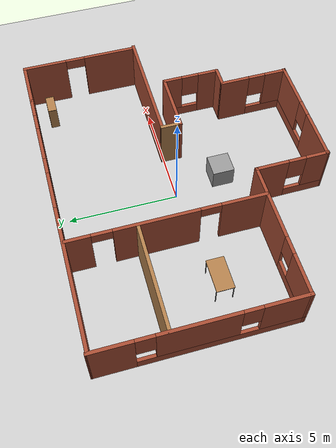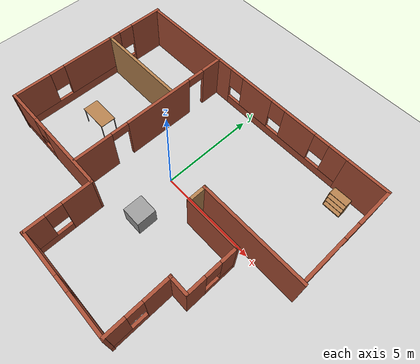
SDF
<sdf version="1.6">
 <world name="default">
  <light name="sun" type="directional">
   <pose>0 0 10 0 -0 0</pose>
   <diffuse>0.8 0.8 0.8 1</diffuse>
   <specular>0.2 0.2 0.2 1</specular>
   <attenuation>
    <range>1000</range>
    <constant>0.9</constant>
    <linear>0.01</linear>
    <quadratic>0.001</quadratic>
   </attenuation>
   <direction>-0.5 0.1 -0.9</direction>
  </light>
  <model name="ground_plane">
   <static>1</static>
   <link name="link">
    <collision name="collision">
     <geometry><plane><normal>0 0 1</normal><size>100 100</size></plane></geometry>
     <surface><friction><ode><mu>100</mu><mu2>50</mu2></ode></friction></surface>
    </collision>
    <visual name="visual">
     <cast_shadows>0</cast_shadows>
     <geometry><plane><normal>0 0 1</normal><size>100 100</size></plane></geometry>
     <material>
      <script><uri>file://media/materials/scripts/gazebo.material</uri><name>Gazebo/Grey</name></script>
     </material>
    </visual>
   </link>
  </model>
  <gravity>0 0 -9.8</gravity>
  <magnetic_field>6e-06 2.3e-05 -4.2e-05</magnetic_field>
  <atmosphere type="adiabatic"/>
  <physics name="default_physics" default="0" type="ode">
   <max_step_size>0.001</max_step_size>
   <real_time_factor>1</real_time_factor>
   <real_time_update_rate>1000</real_time_update_rate>
  </physics>
  <scene><ambient>0.4 0.4 0.4 1</ambient><background>0.7 0.7 0.7 1</background><shadows>1</shadows></scene>
  <spherical_coordinates>
   <surface_model>EARTH_WGS84</surface_model>
   <latitude_deg>0</latitude_deg>
   <longitude_deg>0</longitude_deg>
   <elevation>0</elevation>
   <heading_deg>0</heading_deg>
  </spherical_coordinates>
  <model name="home">
   <pose>0.135395 -0.520069 0 0 -0 0</pose>
   <link name="Wall_11">
    <collision name="Wall_11_Collision">
     <geometry><box><size>1 0.15 2.5</size></box></geometry>
     <pose>0 0 1.25 0 -0 0</pose>
    </collision>
    <visual name="Wall_11_Visual">
     <pose>0 0 1.25 0 -0 0</pose>
     <geometry><box><size>1 0.15 2.5</size></box></geometry>
     <material>
      <script><uri>file://media/materials/scripts/gazebo.material</uri><name>Gazebo/Wood</name></script>
      <ambient>1 1 1 1</ambient>
     </material>
     <meta><layer>0</layer></meta>
    </visual>
    <pose>2.05253 0.152381 0 0 -0 1.5708</pose>
   </link>
   <link name="Wall_21">
    <pose>-4.35242 -2.71192 0 0 -0 3.14159</pose>
    <visual name="Wall_21_Visual_0">
     <pose>-1.33898 0 1.25 0 -0 0</pose>
     <geometry><box><size>3.57205 0.15 2.5</size></box></geometry>
     <material>
      <script><uri>file://media/materials/scripts/gazebo.material</uri><name>Gazebo/Bricks</name></script>
      <ambient>1 1 1 1</ambient>
     </material>
     <meta><layer>0</layer></meta>
    </visual>
    <collision name="Wall_21_Collision_0">
     <geometry><box><size>3.57205 0.15 2.5</size></box></geometry>
     <pose>-1.33898 0 1.25 0 -0 0</pose>
    </collision>
    <visual name="Wall_21_Visual_1">
     <pose>1.78602 0 0.25 0 -0 0</pose>
     <geometry><box><size>2.67795 0.15 0.5</size></box></geometry>
     <material>
      <script><uri>file://media/materials/scripts/gazebo.material</uri><name>Gazebo/Bricks</name></script>
      <ambient>1 1 1 1</ambient>
     </material>
     <meta><layer>0</layer></meta>
    </visual>
    <collision name="Wall_21_Collision_1">
     <geometry><box><size>2.67795 0.15 0.5</size></box></geometry>
     <pose>1.78602 0 0.25 0 -0 0</pose>
    </collision>
    <visual name="Wall_21_Visual_2">
     <pose>2.18602 0 1.5 0 -0 0</pose>
     <geometry><box><size>1.87795 0.15 2</size></box></geometry>
     <material>
      <script><uri>file://media/materials/scripts/gazebo.material</uri><name>Gazebo/Bricks</name></script>
      <ambient>1 1 1 1</ambient>
     </material>
     <meta><layer>0</layer></meta>
    </visual>
    <collision name="Wall_21_Collision_2">
     <geometry><box><size>1.87795 0.15 2</size></box></geometry>
     <pose>2.18602 0 1.5 0 -0 0</pose>
    </collision>
    <visual name="Wall_21_Visual_3">
     <pose>0.847047 0 1.9 0 -0 0</pose>
     <geometry><box><size>0.8 0.15 1.2</size></box></geometry>
     <material>
      <script><uri>file://media/materials/scripts/gazebo.material</uri><name>Gazebo/Bricks</name></script>
      <ambient>1 1 1 1</ambient>
     </material>
     <meta><layer>0</layer></meta>
    </visual>
    <collision name="Wall_21_Collision_3">
     <geometry><box><size>0.8 0.15 1.2</size></box></geometry>
     <pose>0.847047 0 1.9 0 -0 0</pose>
    </collision>
   </link>
   <link name="Wall_25">
    <pose>-7.39585 1.64017 0 0 -0 -1.5723</pose>
    <visual name="Wall_25_Visual_0">
     <pose>-3.5155 0 1.25 0 -0 0</pose>
     <geometry><box><size>1.86058 0.15 2.5</size></box></geometry>
     <material>
      <script><uri>file://media/materials/scripts/gazebo.material</uri><name>Gazebo/Bricks</name></script>
      <ambient>1 1 1 1</ambient>
     </material>
     <meta><layer>0</layer></meta>
    </visual>
    <collision name="Wall_25_Collision_0">
     <geometry><box><size>1.86058 0.15 2.5</size></box></geometry>
     <pose>-3.5155 0 1.25 0 -0 0</pose>
    </collision>
    <visual name="Wall_25_Visual_1">
     <pose>0.930288 0 0.25 0 -0 0</pose>
     <geometry><box><size>7.03099 0.15 0.5</size></box></geometry>
     <material>
      <script><uri>file://media/materials/scripts/gazebo.material</uri><name>Gazebo/Bricks</name></script>
      <ambient>1 1 1 1</ambient>
     </material>
     <meta><layer>0</layer></meta>
    </visual>
    <collision name="Wall_25_Collision_1">
     <geometry><box><size>7.03099 0.15 0.5</size></box></geometry>
     <pose>0.930288 0 0.25 0 -0 0</pose>
    </collision>
    <visual name="Wall_25_Visual_2">
     <pose>-0.079279 0 1.5 0 -0 0</pose>
     <geometry><box><size>3.41186 0.15 2</size></box></geometry>
     <material>
      <script><uri>file://media/materials/scripts/gazebo.material</uri><name>Gazebo/Bricks</name></script>
      <ambient>1 1 1 1</ambient>
     </material>
     <meta><layer>0</layer></meta>
    </visual>
    <collision name="Wall_25_Collision_2">
     <geometry><box><size>3.41186 0.15 2</size></box></geometry>
     <pose>-0.079279 0 1.5 0 -0 0</pose>
    </collision>
    <visual name="Wall_25_Visual_3">
     <pose>3.43622 0 1.5 0 -0 0</pose>
     <geometry><box><size>2.01913 0.15 2</size></box></geometry>
     <material>
      <script><uri>file://media/materials/scripts/gazebo.material</uri><name>Gazebo/Bricks</name></script>
      <ambient>1 1 1 1</ambient>
     </material>
     <meta><layer>0</layer></meta>
    </visual>
    <collision name="Wall_25_Collision_3">
     <geometry><box><size>2.01913 0.15 2</size></box></geometry>
     <pose>3.43622 0 1.5 0 -0 0</pose>
    </collision>
    <visual name="Wall_25_Visual_4">
     <pose>-2.18521 0 1.9 0 -0 0</pose>
     <geometry><box><size>0.8 0.15 1.2</size></box></geometry>
     <material>
      <script><uri>file://media/materials/scripts/gazebo.material</uri><name>Gazebo/Bricks</name></script>
      <ambient>1 1 1 1</ambient>
     </material>
     <meta><layer>0</layer></meta>
    </visual>
    <collision name="Wall_25_Collision_4">
     <geometry><box><size>0.8 0.15 1.2</size></box></geometry>
     <pose>-2.18521 0 1.9 0 -0 0</pose>
    </collision>
    <visual name="Wall_25_Visual_5">
     <pose>2.02665 0 1.9 0 -0 0</pose>
     <geometry><box><size>0.8 0.15 1.2</size></box></geometry>
     <material>
      <script><uri>file://media/materials/scripts/gazebo.material</uri><name>Gazebo/Bricks</name></script>
      <ambient>1 1 1 1</ambient>
     </material>
     <meta><layer>0</layer></meta>
    </visual>
    <collision name="Wall_25_Collision_5">
     <geometry><box><size>0.8 0.15 1.2</size></box></geometry>
     <pose>2.02665 0 1.9 0 -0 0</pose>
    </collision>
   </link>
   <link name="Wall_30">
    <pose>-1.29167 -4.37059 0 0 -0 -1.56424</pose>
    <visual name="Wall_30_Visual_0">
     <pose>-0.9473 0 1.25 0 -0 0</pose>
     <geometry><box><size>1.53543 0.15 2.5</size></box></geometry>
     <material>
      <script><uri>file://media/materials/scripts/gazebo.material</uri><name>Gazebo/Bricks</name></script>
      <ambient>1 1 1 1</ambient>
     </material>
     <meta><layer>0</layer></meta>
    </visual>
    <collision name="Wall_30_Collision_0">
     <geometry><box><size>1.53543 0.15 2.5</size></box></geometry>
     <pose>-0.9473 0 1.25 0 -0 0</pose>
    </collision>
    <visual name="Wall_30_Visual_1">
     <pose>0.767713 0 0.25 0 -0 0</pose>
     <geometry><box><size>1.8946 0.15 0.5</size></box></geometry>
     <material>
      <script><uri>file://media/materials/scripts/gazebo.material</uri><name>Gazebo/Bricks</name></script>
      <ambient>1 1 1 1</ambient>
     </material>
     <meta><layer>0</layer></meta>
    </visual>
    <collision name="Wall_30_Collision_1">
     <geometry><box><size>1.8946 0.15 0.5</size></box></geometry>
     <pose>0.767713 0 0.25 0 -0 0</pose>
    </collision>
    <visual name="Wall_30_Visual_2">
     <pose>1.16771 0 1.5 0 -0 0</pose>
     <geometry><box><size>1.0946 0.15 2</size></box></geometry>
     <material>
      <script><uri>file://media/materials/scripts/gazebo.material</uri><name>Gazebo/Bricks</name></script>
      <ambient>1 1 1 1</ambient>
     </material>
     <meta><layer>0</layer></meta>
    </visual>
    <collision name="Wall_30_Collision_2">
     <geometry><box><size>1.0946 0.15 2</size></box></geometry>
     <pose>1.16771 0 1.5 0 -0 0</pose>
    </collision>
    <visual name="Wall_30_Visual_3">
     <pose>0.220413 0 1.9 0 -0 0</pose>
     <geometry><box><size>0.8 0.15 1.2</size></box></geometry>
     <material>
      <script><uri>file://media/materials/scripts/gazebo.material</uri><name>Gazebo/Bricks</name></script>
      <ambient>1 1 1 1</ambient>
     </material>
     <meta><layer>0</layer></meta>
    </visual>
    <collision name="Wall_30_Collision_3">
     <geometry><box><size>0.8 0.15 1.2</size></box></geometry>
     <pose>0.220413 0 1.9 0 -0 0</pose>
    </collision>
   </link>
   <link name="Wall_32">
    <pose>-1.08927 5.97314 0 0 -0 0</pose>
    <visual name="Wall_32_Visual_0">
     <pose>-3.49837 0 1.25 0 -0 0</pose>
     <geometry><box><size>5.75327 0.15 2.5</size></box></geometry>
     <material>
      <script><uri>file://media/materials/scripts/gazebo.material</uri><name>Gazebo/Bricks</name></script>
      <ambient>1 1 1 1</ambient>
     </material>
     <meta><layer>0</layer></meta>
    </visual>
    <collision name="Wall_32_Collision_0">
     <geometry><box><size>5.75327 0.15 2.5</size></box></geometry>
     <pose>-3.49837 0 1.25 0 -0 0</pose>
    </collision>
    <visual name="Wall_32_Visual_1">
     <pose>2.87663 0 0.25 0 -0 0</pose>
     <geometry><box><size>6.99673 0.15 0.5</size></box></geometry>
     <material>
      <script><uri>file://media/materials/scripts/gazebo.material</uri><name>Gazebo/Bricks</name></script>
      <ambient>1 1 1 1</ambient>
     </material>
     <meta><layer>0</layer></meta>
    </visual>
    <collision name="Wall_32_Collision_1">
     <geometry><box><size>6.99673 0.15 0.5</size></box></geometry>
     <pose>2.87663 0 0.25 0 -0 0</pose>
    </collision>
    <visual name="Wall_32_Visual_2">
     <pose>1.09596 0 1.5 0 -0 0</pose>
     <geometry><box><size>1.83539 0.15 2</size></box></geometry>
     <material>
      <script><uri>file://media/materials/scripts/gazebo.material</uri><name>Gazebo/Bricks</name></script>
      <ambient>1 1 1 1</ambient>
     </material>
     <meta><layer>0</layer></meta>
    </visual>
    <collision name="Wall_32_Collision_2">
     <geometry><box><size>1.83539 0.15 2</size></box></geometry>
     <pose>1.09596 0 1.5 0 -0 0</pose>
    </collision>
    <visual name="Wall_32_Visual_3">
     <pose>3.68463 0 1.5 0 -0 0</pose>
     <geometry><box><size>1.74194 0.15 2</size></box></geometry>
     <material>
      <script><uri>file://media/materials/scripts/gazebo.material</uri><name>Gazebo/Bricks</name></script>
      <ambient>1 1 1 1</ambient>
     </material>
     <meta><layer>0</layer></meta>
    </visual>
    <collision name="Wall_32_Collision_3">
     <geometry><box><size>1.74194 0.15 2</size></box></geometry>
     <pose>3.68463 0 1.5 0 -0 0</pose>
    </collision>
    <visual name="Wall_32_Visual_4">
     <pose>5.8653 0 1.5 0 -0 0</pose>
     <geometry><box><size>1.0194 0.15 2</size></box></geometry>
     <material>
      <script><uri>file://media/materials/scripts/gazebo.material</uri><name>Gazebo/Bricks</name></script>
      <ambient>1 1 1 1</ambient>
     </material>
     <meta><layer>0</layer></meta>
    </visual>
    <collision name="Wall_32_Collision_4">
     <geometry><box><size>1.0194 0.15 2</size></box></geometry>
     <pose>5.8653 0 1.5 0 -0 0</pose>
    </collision>
    <visual name="Wall_32_Visual_5">
     <pose>-0.221732 0 1.9 0 -0 0</pose>
     <geometry><box><size>0.8 0.15 1.2</size></box></geometry>
     <material>
      <script><uri>file://media/materials/scripts/gazebo.material</uri><name>Gazebo/Bricks</name></script>
      <ambient>1 1 1 1</ambient>
     </material>
     <meta><layer>0</layer></meta>
    </visual>
    <collision name="Wall_32_Collision_5">
     <geometry><box><size>0.8 0.15 1.2</size></box></geometry>
     <pose>-0.221732 0 1.9 0 -0 0</pose>
    </collision>
    <visual name="Wall_32_Visual_6">
     <pose>2.41366 0 1.9 0 -0 0</pose>
     <geometry><box><size>0.8 0.15 1.2</size></box></geometry>
     <material>
      <script><uri>file://media/materials/scripts/gazebo.material</uri><name>Gazebo/Bricks</name></script>
      <ambient>1 1 1 1</ambient>
     </material>
     <meta><layer>0</layer></meta>
    </visual>
    <collision name="Wall_32_Collision_6">
     <geometry><box><size>0.8 0.15 1.2</size></box></geometry>
     <pose>2.41366 0 1.9 0 -0 0</pose>
    </collision>
    <visual name="Wall_32_Visual_7">
     <pose>4.9556 0 1.9 0 -0 0</pose>
     <geometry><box><size>0.8 0.15 1.2</size></box></geometry>
     <material>
      <script><uri>file://media/materials/scripts/gazebo.material</uri><name>Gazebo/Bricks</name></script>
      <ambient>1 1 1 1</ambient>
     </material>
     <meta><layer>0</layer></meta>
    </visual>
    <collision name="Wall_32_Collision_7">
     <geometry><box><size>0.8 0.15 1.2</size></box></geometry>
     <pose>4.9556 0 1.9 0 -0 0</pose>
    </collision>
   </link>
   <link name="Wall_36">
    <pose>-2.61655 1.59512 0 0 -0 1.5708</pose>
    <visual name="Wall_36_Visual_0">
     <pose>-3.33035 0 1.25 0 -0 0</pose>
     <geometry><box><size>2.0893 0.15 2.5</size></box></geometry>
     <material>
      <script><uri>file://media/materials/scripts/gazebo.material</uri><name>Gazebo/Bricks</name></script>
      <ambient>1 1 1 1</ambient>
     </material>
     <meta><layer>0</layer></meta>
    </visual>
    <collision name="Wall_36_Collision_0">
     <geometry><box><size>2.0893 0.15 2.5</size></box></geometry>
     <pose>-3.33035 0 1.25 0 -0 0</pose>
    </collision>
    <visual name="Wall_36_Visual_1">
     <pose>0.480973 0 1.25 0 -0 0</pose>
     <geometry><box><size>3.73334 0.15 2.5</size></box></geometry>
     <material>
      <script><uri>file://media/materials/scripts/gazebo.material</uri><name>Gazebo/Bricks</name></script>
      <ambient>1 1 1 1</ambient>
     </material>
     <meta><layer>0</layer></meta>
    </visual>
    <collision name="Wall_36_Collision_1">
     <geometry><box><size>3.73334 0.15 2.5</size></box></geometry>
     <pose>0.480973 0 1.25 0 -0 0</pose>
    </collision>
    <visual name="Wall_36_Visual_2">
     <pose>3.81132 0 1.25 0 -0 0</pose>
     <geometry><box><size>1.12736 0.15 2.5</size></box></geometry>
     <material>
      <script><uri>file://media/materials/scripts/gazebo.material</uri><name>Gazebo/Bricks</name></script>
      <ambient>1 1 1 1</ambient>
     </material>
     <meta><layer>0</layer></meta>
    </visual>
    <collision name="Wall_36_Collision_2">
     <geometry><box><size>1.12736 0.15 2.5</size></box></geometry>
     <pose>3.81132 0 1.25 0 -0 0</pose>
    </collision>
    <visual name="Wall_36_Visual_3">
     <pose>-1.8357 0 2.25 0 -0 0</pose>
     <geometry><box><size>0.9 0.15 0.5</size></box></geometry>
     <material>
      <script><uri>file://media/materials/scripts/gazebo.material</uri><name>Gazebo/Bricks</name></script>
      <ambient>1 1 1 1</ambient>
     </material>
     <meta><layer>0</layer></meta>
    </visual>
    <collision name="Wall_36_Collision_3">
     <geometry><box><size>0.9 0.15 0.5</size></box></geometry>
     <pose>-1.8357 0 2.25 0 -0 0</pose>
    </collision>
    <visual name="Wall_36_Visual_4">
     <pose>2.79765 0 2.25 0 -0 0</pose>
     <geometry><box><size>0.9 0.15 0.5</size></box></geometry>
     <material>
      <script><uri>file://media/materials/scripts/gazebo.material</uri><name>Gazebo/Bricks</name></script>
      <ambient>1 1 1 1</ambient>
     </material>
     <meta><layer>0</layer></meta>
    </visual>
    <collision name="Wall_36_Collision_4">
     <geometry><box><size>0.9 0.15 0.5</size></box></geometry>
     <pose>2.79765 0 2.25 0 -0 0</pose>
    </collision>
   </link>
   <link name="Wall_38">
    <collision name="Wall_38_Collision">
     <geometry><box><size>4.75 0.15 2.5</size></box></geometry>
     <pose>0 0 1.25 0 -0 0</pose>
    </collision>
    <visual name="Wall_38_Visual">
     <pose>0 0 1.25 0 -0 0</pose>
     <geometry><box><size>4.75 0.15 2.5</size></box></geometry>
     <material>
      <script><uri>file://media/materials/scripts/gazebo.material</uri><name>Gazebo/Wood</name></script>
      <ambient>1 1 1 1</ambient>
     </material>
     <meta><layer>0</layer></meta>
    </visual>
    <pose>-5.06252 2.89061 0 0 -0 0</pose>
   </link>
   <link name="Wall_45">
    <pose>3.88151 -4.43231 0 0 -0 -1.5656</pose>
    <visual name="Wall_45_Visual_0">
     <pose>-0.937293 0 1.25 0 -0 0</pose>
     <geometry><box><size>1.3941 0.15 2.5</size></box></geometry>
     <material>
      <script><uri>file://media/materials/scripts/gazebo.material</uri><name>Gazebo/Bricks</name></script>
      <ambient>1 1 1 1</ambient>
     </material>
     <meta><layer>0</layer></meta>
    </visual>
    <collision name="Wall_45_Collision_0">
     <geometry><box><size>1.3941 0.15 2.5</size></box></geometry>
     <pose>-0.937293 0 1.25 0 -0 0</pose>
    </collision>
    <visual name="Wall_45_Visual_1">
     <pose>0.697049 0 0.25 0 -0 0</pose>
     <geometry><box><size>1.87459 0.15 0.5</size></box></geometry>
     <material>
      <script><uri>file://media/materials/scripts/gazebo.material</uri><name>Gazebo/Bricks</name></script>
      <ambient>1 1 1 1</ambient>
     </material>
     <meta><layer>0</layer></meta>
    </visual>
    <collision name="Wall_45_Collision_1">
     <geometry><box><size>1.87459 0.15 0.5</size></box></geometry>
     <pose>0.697049 0 0.25 0 -0 0</pose>
    </collision>
    <visual name="Wall_45_Visual_2">
     <pose>1.09705 0 1.5 0 -0 0</pose>
     <geometry><box><size>1.07459 0.15 2</size></box></geometry>
     <material>
      <script><uri>file://media/materials/scripts/gazebo.material</uri><name>Gazebo/Bricks</name></script>
      <ambient>1 1 1 1</ambient>
     </material>
     <meta><layer>0</layer></meta>
    </visual>
    <collision name="Wall_45_Collision_2">
     <geometry><box><size>1.07459 0.15 2</size></box></geometry>
     <pose>1.09705 0 1.5 0 -0 0</pose>
    </collision>
    <visual name="Wall_45_Visual_3">
     <pose>0.159756 0 1.9 0 -0 0</pose>
     <geometry><box><size>0.8 0.15 1.2</size></box></geometry>
     <material>
      <script><uri>file://media/materials/scripts/gazebo.material</uri><name>Gazebo/Bricks</name></script>
      <ambient>1 1 1 1</ambient>
     </material>
     <meta><layer>0</layer></meta>
    </visual>
    <collision name="Wall_45_Collision_3">
     <geometry><box><size>0.8 0.15 1.2</size></box></geometry>
     <pose>0.159756 0 1.9 0 -0 0</pose>
    </collision>
   </link>
   <link name="Wall_47">
    <pose>1.31509 -5.99035 0 0 -0 -0.000493</pose>
    <visual name="Wall_47_Visual_0">
     <pose>-1.5056 0 1.25 0 -0 0</pose>
     <geometry><box><size>2.33083 0.15 2.5</size></box></geometry>
     <material>
      <script><uri>file://media/materials/scripts/gazebo.material</uri><name>Gazebo/Bricks</name></script>
      <ambient>1 1 1 1</ambient>
     </material>
     <meta><layer>0</layer></meta>
    </visual>
    <collision name="Wall_47_Collision_0">
     <geometry><box><size>2.33083 0.15 2.5</size></box></geometry>
     <pose>-1.5056 0 1.25 0 -0 0</pose>
    </collision>
    <visual name="Wall_47_Visual_1">
     <pose>1.16541 0 0.25 0 -0 0</pose>
     <geometry><box><size>3.01121 0.15 0.5</size></box></geometry>
     <material>
      <script><uri>file://media/materials/scripts/gazebo.material</uri><name>Gazebo/Bricks</name></script>
      <ambient>1 1 1 1</ambient>
     </material>
     <meta><layer>0</layer></meta>
    </visual>
    <collision name="Wall_47_Collision_1">
     <geometry><box><size>3.01121 0.15 0.5</size></box></geometry>
     <pose>1.16541 0 0.25 0 -0 0</pose>
    </collision>
    <visual name="Wall_47_Visual_2">
     <pose>1.56541 0 1.5 0 -0 0</pose>
     <geometry><box><size>2.21121 0.15 2</size></box></geometry>
     <material>
      <script><uri>file://media/materials/scripts/gazebo.material</uri><name>Gazebo/Bricks</name></script>
      <ambient>1 1 1 1</ambient>
     </material>
     <meta><layer>0</layer></meta>
    </visual>
    <collision name="Wall_47_Collision_2">
     <geometry><box><size>2.21121 0.15 2</size></box></geometry>
     <pose>1.56541 0 1.5 0 -0 0</pose>
    </collision>
    <visual name="Wall_47_Visual_3">
     <pose>0.059809 0 1.9 0 -0 0</pose>
     <geometry><box><size>0.8 0.15 1.2</size></box></geometry>
     <material>
      <script><uri>file://media/materials/scripts/gazebo.material</uri><name>Gazebo/Bricks</name></script>
      <ambient>1 1 1 1</ambient>
     </material>
     <meta><layer>0</layer></meta>
    </visual>
    <collision name="Wall_47_Collision_3">
     <geometry><box><size>0.8 0.15 1.2</size></box></geometry>
     <pose>0.059809 0 1.9 0 -0 0</pose>
    </collision>
   </link>
   <link name="Wall_50">
    <pose>7.31876 3.29265 0 0 -0 -1.5708</pose>
    <visual name="Wall_50_Visual_0">
     <pose>-1.71277 0 1.25 0 -0 0</pose>
     <geometry><box><size>2.07446 0.15 2.5</size></box></geometry>
     <material>
      <script><uri>file://media/materials/scripts/gazebo.material</uri><name>Gazebo/Bricks</name></script>
      <ambient>1 1 1 1</ambient>
     </material>
     <meta><layer>0</layer></meta>
    </visual>
    <collision name="Wall_50_Collision_0">
     <geometry><box><size>2.07446 0.15 2.5</size></box></geometry>
     <pose>-1.71277 0 1.25 0 -0 0</pose>
    </collision>
    <visual name="Wall_50_Visual_1">
     <pose>1.48723 0 1.25 0 -0 0</pose>
     <geometry><box><size>2.52554 0.15 2.5</size></box></geometry>
     <material>
      <script><uri>file://media/materials/scripts/gazebo.material</uri><name>Gazebo/Bricks</name></script>
      <ambient>1 1 1 1</ambient>
     </material>
     <meta><layer>0</layer></meta>
    </visual>
    <collision name="Wall_50_Collision_1">
     <geometry><box><size>2.52554 0.15 2.5</size></box></geometry>
     <pose>1.48723 0 1.25 0 -0 0</pose>
    </collision>
    <visual name="Wall_50_Visual_2">
     <pose>-0.225536 0 2.25 0 -0 0</pose>
     <geometry><box><size>0.9 0.15 0.5</size></box></geometry>
     <material>
      <script><uri>file://media/materials/scripts/gazebo.material</uri><name>Gazebo/Bricks</name></script>
      <ambient>1 1 1 1</ambient>
     </material>
     <meta><layer>0</layer></meta>
    </visual>
    <collision name="Wall_50_Collision_2">
     <geometry><box><size>0.9 0.15 0.5</size></box></geometry>
     <pose>-0.225536 0 2.25 0 -0 0</pose>
    </collision>
   </link>
   <link name="Wall_55">
    <collision name="Wall_55_Collision">
     <geometry><box><size>5.5 0.15 2.5</size></box></geometry>
     <pose>0 0 1.25 0 -0 0</pose>
    </collision>
    <visual name="Wall_55_Visual">
     <pose>0 0 1.25 0 -0 0</pose>
     <geometry><box><size>5.5 0.15 2.5</size></box></geometry>
     <material>
      <script><uri>file://media/materials/scripts/gazebo.material</uri><name>Gazebo/Bricks</name></script>
      <ambient>1 1 1 1</ambient>
     </material>
     <meta><layer>0</layer></meta>
    </visual>
    <pose>4.72753 0.577381 0 0 -0 0</pose>
   </link>
   <link name="Wall_57">
    <collision name="Wall_57_Collision">
     <geometry><box><size>2.25804 0.15 2.5</size></box></geometry>
     <pose>0 0 1.25 0 -0 0</pose>
    </collision>
    <visual name="Wall_57_Visual">
     <pose>0 0 1.25 0 -0 0</pose>
     <geometry><box><size>2.25804 0.15 2.5</size></box></geometry>
     <material>
      <script><uri>file://media/materials/scripts/gazebo.material</uri><name>Gazebo/Bricks</name></script>
      <ambient>1 1 1 1</ambient>
     </material>
     <meta><layer>0</layer></meta>
    </visual>
    <pose>6.26475 5.9704 0 0 -0 -0.002602</pose>
   </link>
   <link name="Wall_7">
    <collision name="Wall_7_Collision">
     <geometry><box><size>1 0.15 2.5</size></box></geometry>
     <pose>0 0 1.25 0 -0 0</pose>
    </collision>
    <visual name="Wall_7_Visual">
     <pose>0 0 1.25 0 -0 0</pose>
     <geometry><box><size>1 0.15 2.5</size></box></geometry>
     <material>
      <script><uri>file://media/materials/scripts/gazebo.material</uri><name>Gazebo/Bricks</name></script>
      <ambient>1 1 1 1</ambient>
     </material>
     <meta><layer>0</layer></meta>
    </visual>
    <pose>4.31989 -2.87299 0 0 -0 0</pose>
   </link>
   <link name="Wall_8">
    <pose>4.74489 -1.57299 0 0 -0 1.5708</pose>
    <visual name="Wall_8_Visual_0">
     <pose>-0.864898 0 1.25 0 -0 0</pose>
     <geometry><box><size>1.0202 0.15 2.5</size></box></geometry>
     <material>
      <script><uri>file://media/materials/scripts/gazebo.material</uri><name>Gazebo/Bricks</name></script>
      <ambient>1 1 1 1</ambient>
     </material>
     <meta><layer>0</layer></meta>
    </visual>
    <collision name="Wall_8_Collision_0">
     <geometry><box><size>1.0202 0.15 2.5</size></box></geometry>
     <pose>-0.864898 0 1.25 0 -0 0</pose>
    </collision>
    <visual name="Wall_8_Visual_1">
     <pose>0.510102 0 0.25 0 -0 0</pose>
     <geometry><box><size>1.7298 0.15 0.5</size></box></geometry>
     <material>
      <script><uri>file://media/materials/scripts/gazebo.material</uri><name>Gazebo/Bricks</name></script>
      <ambient>1 1 1 1</ambient>
     </material>
     <meta><layer>0</layer></meta>
    </visual>
    <collision name="Wall_8_Collision_1">
     <geometry><box><size>1.7298 0.15 0.5</size></box></geometry>
     <pose>0.510102 0 0.25 0 -0 0</pose>
    </collision>
    <visual name="Wall_8_Visual_2">
     <pose>0.910102 0 1.5 0 -0 0</pose>
     <geometry><box><size>0.929797 0.15 2</size></box></geometry>
     <material>
      <script><uri>file://media/materials/scripts/gazebo.material</uri><name>Gazebo/Bricks</name></script>
      <ambient>1 1 1 1</ambient>
     </material>
     <meta><layer>0</layer></meta>
    </visual>
    <collision name="Wall_8_Collision_2">
     <geometry><box><size>0.929797 0.15 2</size></box></geometry>
     <pose>0.910102 0 1.5 0 -0 0</pose>
    </collision>
    <visual name="Wall_8_Visual_3">
     <pose>0.045203 0 1.9 0 -0 0</pose>
     <geometry><box><size>0.8 0.15 1.2</size></box></geometry>
     <material>
      <script><uri>file://media/materials/scripts/gazebo.material</uri><name>Gazebo/Bricks</name></script>
      <ambient>1 1 1 1</ambient>
     </material>
     <meta><layer>0</layer></meta>
    </visual>
    <collision name="Wall_8_Collision_3">
     <geometry><box><size>0.8 0.15 1.2</size></box></geometry>
     <pose>0.045203 0 1.9 0 -0 0</pose>
    </collision>
   </link>
   <link name="Wall_9">
    <collision name="Wall_9_Collision">
     <geometry><box><size>2.84585 0.15 2.5</size></box></geometry>
     <pose>0 0 1.25 0 -0 0</pose>
    </collision>
    <visual name="Wall_9_Visual">
     <pose>0 0 1.25 0 -0 0</pose>
     <geometry><box><size>2.84585 0.15 2.5</size></box></geometry>
     <material>
      <script><uri>file://media/materials/scripts/gazebo.material</uri><name>Gazebo/Bricks</name></script>
      <ambient>1 1 1 1</ambient>
     </material>
     <meta><layer>0</layer></meta>
    </visual>
    <pose>3.39697 -0.272805 0 0 -0 3.14146</pose>
   </link>
   <static>1</static>
  </model>
  <model name="table">
   <static>1</static>
   <link name="link">
    <collision name="surface">
     <pose>0 0 1 0 -0 0</pose>
     <geometry><box><size>1.5 0.8 0.03</size></box></geometry>
     <surface><friction><ode><mu>0.6</mu><mu2>0.6</mu2></ode></friction></surface>
    </collision>
    <visual name="visual1">
     <pose>0 0 1 0 -0 0</pose>
     <geometry><box><size>1.5 0.8 0.03</size></box></geometry>
     <material>
      <script><uri>file://media/materials/scripts/gazebo.material</uri><name>Gazebo/Wood</name></script>
     </material>
    </visual>
    <collision name="front_left_leg">
     <pose>0.68 0.38 0.5 0 -0 0</pose>
     <geometry><cylinder><radius>0.02</radius><length>1</length></cylinder></geometry>
    </collision>
    <visual name="front_left_leg">
     <pose>0.68 0.38 0.5 0 -0 0</pose>
     <geometry><cylinder><radius>0.02</radius><length>1</length></cylinder></geometry>
     <material>
      <script><uri>file://media/materials/scripts/gazebo.material</uri><name>Gazebo/Grey</name></script>
     </material>
    </visual>
    <collision name="front_right_leg">
     <pose>0.68 -0.38 0.5 0 -0 0</pose>
     <geometry><cylinder><radius>0.02</radius><length>1</length></cylinder></geometry>
    </collision>
    <visual name="front_right_leg">
     <pose>0.68 -0.38 0.5 0 -0 0</pose>
     <geometry><cylinder><radius>0.02</radius><length>1</length></cylinder></geometry>
     <material>
      <script><uri>file://media/materials/scripts/gazebo.material</uri><name>Gazebo/Grey</name></script>
     </material>
    </visual>
    <collision name="back_right_leg">
     <pose>-0.68 -0.38 0.5 0 -0 0</pose>
     <geometry><cylinder><radius>0.02</radius><length>1</length></cylinder></geometry>
    </collision>
    <visual name="back_right_leg">
     <pose>-0.68 -0.38 0.5 0 -0 0</pose>
     <geometry><cylinder><radius>0.02</radius><length>1</length></cylinder></geometry>
     <material>
      <script><uri>file://media/materials/scripts/gazebo.material</uri><name>Gazebo/Grey</name></script>
     </material>
    </visual>
    <collision name="back_left_leg">
     <pose>-0.68 0.38 0.5 0 -0 0</pose>
     <geometry><cylinder><radius>0.02</radius><length>1</length></cylinder></geometry>
    </collision>
    <visual name="back_left_leg">
     <pose>-0.68 0.38 0.5 0 -0 0</pose>
     <geometry><cylinder><radius>0.02</radius><length>1</length></cylinder></geometry>
     <material>
      <script><uri>file://media/materials/scripts/gazebo.material</uri><name>Gazebo/Grey</name></script>
     </material>
    </visual>
   </link>
   <pose>-4.82056 -0.476028 0 0 -0 0</pose>
  </model>
  <model name="unit_box">
   <pose>0.573124 -2.26914 0.499995 0 1e-05 0</pose>
   <link name="link">
    <inertial>
     <mass>1</mass>
     <inertia>
      <ixx>0.166667</ixx>
      <ixy>0</ixy>
      <ixz>0</ixz>
      <iyy>0.166667</iyy>
      <iyz>0</iyz>
      <izz>0.166667</izz>
     </inertia>
    </inertial>
    <collision name="collision"><geometry><box><size>1 1 1</size></box></geometry></collision>
    <visual name="visual">
     <geometry><box><size>1 1 1</size></box></geometry>
     <material>
      <script><name>Gazebo/Grey</name><uri>file://media/materials/scripts/gazebo.material</uri></script>
     </material>
    </visual>
   </link>
  </model>
  <model name="bookshelf">
   <static>1</static>
   <link name="link">
    <inertial><mass>1</mass></inertial>
    <collision name="back">
     <pose>0 0.005 0.6 0 -0 0</pose>
     <geometry><box><size>0.9 0.01 1.2</size></box></geometry>
    </collision>
    <visual name="visual1">
     <pose>0 0.005 0.6 0 -0 0</pose>
     <geometry><box><size>0.9 0.01 1.2</size></box></geometry>
     <material>
      <script><uri>file://media/materials/scripts/gazebo.material</uri><name>Gazebo/Wood</name></script>
     </material>
    </visual>
    <collision name="left_side">
     <pose>0.45 -0.195 0.6 0 -0 0</pose>
     <geometry><box><size>0.02 0.4 1.2</size></box></geometry>
    </collision>
    <visual name="visual2">
     <pose>0.45 -0.195 0.6 0 -0 0</pose>
     <geometry><box><size>0.02 0.4 1.2</size></box></geometry>
     <material>
      <script><uri>file://media/materials/scripts/gazebo.material</uri><name>Gazebo/Wood</name></script>
     </material>
    </visual>
    <collision name="right_side">
     <pose>-0.45 -0.195 0.6 0 -0 0</pose>
     <geometry><box><size>0.02 0.4 1.2</size></box></geometry>
    </collision>
    <visual name="visual3">
     <pose>-0.45 -0.195 0.6 0 -0 0</pose>
     <geometry><box><size>0.02 0.4 1.2</size></box></geometry>
     <material>
      <script><uri>file://media/materials/scripts/gazebo.material</uri><name>Gazebo/Wood</name></script>
     </material>
    </visual>
    <collision name="bottom">
     <pose>0 -0.195 0.03 0 -0 0</pose>
     <geometry><box><size>0.88 0.4 0.06</size></box></geometry>
    </collision>
    <visual name="visual4">
     <pose>0 -0.195 0.03 0 -0 0</pose>
     <geometry><box><size>0.88 0.4 0.06</size></box></geometry>
     <material>
      <script><uri>file://media/materials/scripts/gazebo.material</uri><name>Gazebo/Wood</name></script>
     </material>
    </visual>
    <collision name="top">
     <pose>0 -0.195 1.19 0 -0 0</pose>
     <geometry><box><size>0.88 0.4 0.02</size></box></geometry>
    </collision>
    <visual name="visual5">
     <pose>0 -0.195 1.19 0 -0 0</pose>
     <geometry><box><size>0.88 0.4 0.02</size></box></geometry>
     <material>
      <script><uri>file://media/materials/scripts/gazebo.material</uri><name>Gazebo/Wood</name></script>
     </material>
    </visual>
    <collision name="low_shelf">
     <pose>0 -0.195 0.43 0 -0 0</pose>
     <geometry><box><size>0.88 0.4 0.02</size></box></geometry>
    </collision>
    <visual name="visual6">
     <pose>0 -0.195 0.43 0 -0 0</pose>
     <geometry><box><size>0.88 0.4 0.02</size></box></geometry>
     <material>
      <script><uri>file://media/materials/scripts/gazebo.material</uri><name>Gazebo/Wood</name></script>
     </material>
    </visual>
    <collision name="high_shelf">
     <pose>0 -0.195 0.8 0 -0 0</pose>
     <geometry><box><size>0.88 0.4 0.02</size></box></geometry>
    </collision>
    <visual name="visual7">
     <pose>0 -0.195 0.8 0 -0 0</pose>
     <geometry><box><size>0.88 0.4 0.02</size></box></geometry>
     <material>
      <script><uri>file://media/materials/scripts/gazebo.material</uri><name>Gazebo/Wood</name></script>
     </material>
    </visual>
   </link>
   <pose>6.11232 4.79914 0 0 -0 0</pose>
  </model>
 </world>
</sdf>
